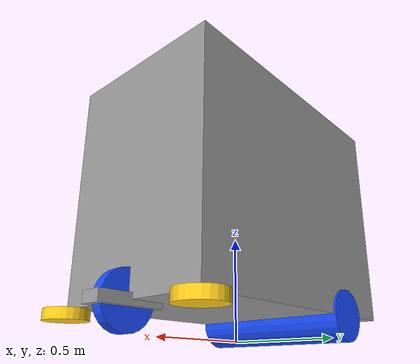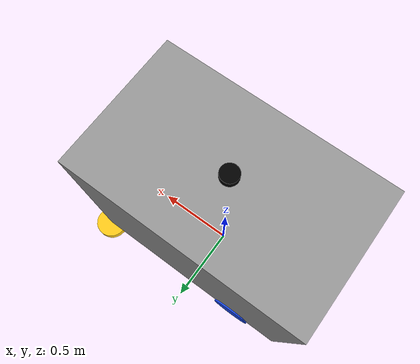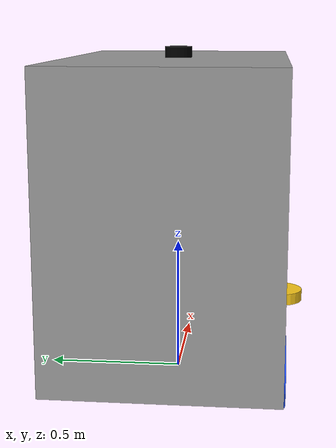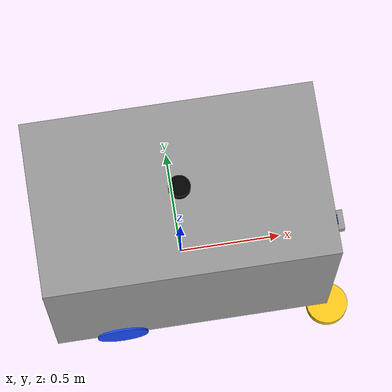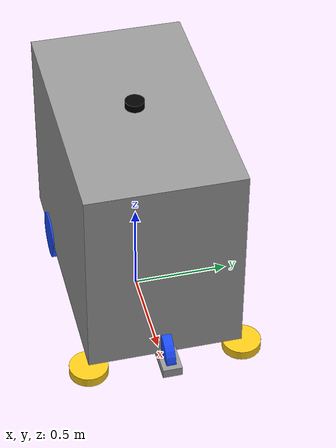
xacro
<?xml version="1.0"?>
<robot xmlns:xacro="http://www.ros.org/wiki/xacro"  name="robot">

    <xacro:arg name="use_ros2_control" default="false"/>
    <xacro:arg name="sim_mode" default="true"/>

    <xacro:include filename="sweeper_core.xacro" />

    <xacro:if value="$(arg use_ros2_control)">
        <xacro:include filename="ros2_control.xacro" />
    </xacro:if>
    <xacro:unless value="$(arg use_ros2_control)">
        <xacro:include filename="gazebo_control.xacro" />
    </xacro:unless>
    <xacro:include filename="lidar.xacro" />

</robot>

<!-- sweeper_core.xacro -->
<robot xmlns:xacro="http://www.ros.org/wiki/xacro">

  <xacro:include filename="inertial_macros.xacro"/>

  <!-- Eigenschappen -->
  <xacro:property name="base_length" value="1.33"/>
  <xacro:property name="base_width" value="0.8"/>
  <xacro:property name="base_height" value="1.07"/>
  <xacro:property name="base_mass" value="10.0"/>

  <xacro:property name="wheel_radius" value="0.125"/>
  <xacro:property name="wheel_thickness" value="0.05"/>
  <xacro:property name="wheel_mass" value="1.0"/>
  <xacro:property name="wheel_separation" value="0.82"/>

  <xacro:property name="front_wheel_offset_x" value="${base_length/2}"/>
  <xacro:property name="rear_wheel_offset_x" value="${-base_length/2 + 0.32}"/>

  <!-- Wielen komen met hun onderkant op z=0 -->
  <xacro:property name="wheel_offset_z" value="${wheel_radius}"/>

  <xacro:property name="brush_offset_y" value="${base_width/2 + 0.1}"/>
  <xacro:property name="brush_radius" value="0.1"/>
  <xacro:property name="brush_length" value="0.05"/>

  <!-- Kleuren -->
  <material name="blue">
    <color rgba="0.1 0.3 1.0 1.0"/>
  </material>

  <material name="yellow">
    <color rgba="1.0 0.8 0.1 1.0"/>
  </material>

  <material name="gray">
    <color rgba="0.6 0.6 0.6 1.0"/>
  </material>

  <material name="black">
    <color rgba="0 0 0 1"/>
  </material>

  <!-- BASE LINK -->
  <link name="base_link">
    <visual>
      <origin xyz="0 0 ${wheel_offset_z + base_height/2}"/>
      <geometry>
        <box size="${base_length} ${base_width} ${base_height}"/>
      </geometry>
      <material name="gray"/>
    </visual>
    <collision>
      <origin xyz="0 0 ${wheel_offset_z + base_height/2}"/>
      <geometry>
        <box size="${base_length} ${base_width} ${base_height}"/>
      </geometry>
    </collision>
    <xacro:inertial_box mass="${base_mass}" x="${base_length}" y="${base_width}" z="${base_height}">
      <origin xyz="0 0 ${wheel_offset_z + base_height/2}" rpy="0 0 0"/>
    </xacro:inertial_box>
  </link>

  <gazebo reference="base_link">
    <material>Gazebo/Grey</material>
  </gazebo>

  <!-- BACK WHEELS -->
  <joint name="rear_wheel_joint" type="continuous">
    <parent link="base_link"/>
    <child link="back_wheels"/>
    <origin xyz="${rear_wheel_offset_x} 0 ${wheel_offset_z}"/>
    <axis xyz="0 1 0"/>
  </joint>

  <link name="back_wheels">
    <visual>
      <origin xyz="0 0 0" rpy="${pi/2} 0 0"/>
      <geometry>
        <cylinder radius="${wheel_radius}" length="${wheel_separation}"/>
      </geometry>
      <material name="blue"/>
    </visual>
    <collision>
      <origin xyz="0 0 0" rpy="${pi/2} 0 0"/>
      <geometry>
        <cylinder radius="${wheel_radius}" length="${wheel_separation}"/>
      </geometry>
    </collision>
  </link>

  <gazebo reference="back_wheels">
    <material>Gazebo/Blue</material>
  </gazebo>

  <!-- FRONT STEERING -->
  <joint name="steering_joint" type="revolute">
    <parent link="base_link"/>
    <child link="front_steering"/>
    <origin xyz="${front_wheel_offset_x} 0 ${wheel_offset_z}"/>
    <axis xyz="0 0 1"/>
    <limit lower="-0.785" upper="0.785" effort="10" velocity="1.0"/>
  </joint>

  <link name="front_steering">
    <visual>
      <geometry>
        <box size="0.3 0.1 0.05"/>
      </geometry>
      <material name="gray"/>
    </visual>
  </link>

  <gazebo reference="front_steering">
    <material>Gazebo/Grey</material>
  </gazebo>

  <!-- FRONT WHEEL -->
  <joint name="front_wheel_joint" type="continuous">
    <parent link="front_steering"/>
    <child link="front_wheel"/>
    <origin xyz="0 0 0"/>
    <axis xyz="0 1 0"/>
  </joint>

  <link name="front_wheel">
    <visual>
      <origin xyz="0 0 0" rpy="${pi/2} 0 0"/>
      <geometry>
        <cylinder radius="${wheel_radius}" length="${wheel_thickness}"/>
      </geometry>
      <material name="blue"/>
    </visual>
  </link>

  <gazebo reference="front_wheel">
    <material>Gazebo/Blue</material>
  </gazebo>

  <!-- LEFT BRUSH -->
  <joint name="brush_left_joint" type="fixed">
    <parent link="base_link"/>
    <child link="brush_left"/>
    <origin xyz="0.665 ${brush_offset_y - 0.1} ${wheel_offset_z - brush_length/2}"/>
  </joint>

  <link name="brush_left">
    <visual>
      <origin xyz="0 0 0" rpy="0 0 0"/>
      <geometry>
        <cylinder radius="${brush_radius}" length="${brush_length}"/>
      </geometry>
      <material name="yellow"/>
    </visual>
  </link>

  <gazebo reference="brush_left">
    <material>Gazebo/Yellow</material>
  </gazebo>

  <!-- RIGHT BRUSH -->
  <joint name="brush_right_joint" type="fixed">
    <parent link="base_link"/>
    <child link="brush_right"/>
    <origin xyz="0.665 ${-brush_offset_y + 0.1} ${wheel_offset_z - brush_length/2}"/>
  </joint>

  <link name="brush_right">
    <visual>
      <origin xyz="0 0 0" rpy="0 0 0"/>
      <geometry>
        <cylinder radius="${brush_radius}" length="${brush_length}"/>
      </geometry>
      <material name="yellow"/>
    </visual>
  </link>

  <gazebo reference="brush_right">
    <material>Gazebo/Yellow</material>
  </gazebo>

</robot>

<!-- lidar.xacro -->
<robot xmlns:xacro="http://www.ros.org/wiki/xacro" >

    <joint name="laser_joint" type="fixed">
        <parent link="base_link"/>
        <child link="laser_frame"/>
        <origin xyz="0 0 1.215" rpy="0 0 0"/>
    </joint>

    <link name="laser_frame">
        <visual>
            <geometry>
                <cylinder radius="0.05" length="0.04"/>
            </geometry>
            <material name="black"/>
        </visual>
        <visual>
            <origin xyz="0 0 -0.05"/>
            <geometry>
                <cylinder radius="0.01" length="0.1"/>
            </geometry>
            <material name="black"/>
        </visual>
        <collision>
            <geometry>
                <cylinder radius="0.05" length="0.04"/>
            </geometry>
        </collision>
        <xacro:inertial_cylinder mass="0.1" length="0.04" radius="0.05">
            <origin xyz="0 0 0" rpy="0 0 0"/>
        </xacro:inertial_cylinder>
    </link>

    <gazebo reference="laser_frame">
        <material>Gazebo/Black</material>

        <sensor name="laser" type="gpu_lidar">
            <pose> 0 0 0 0 0 0 </pose>
            <visualize>false</visualize>
            <update_rate>10</update_rate>
            <lidar>
                <scan>
                    <horizontal>
                        <samples>360</samples>
                        <min_angle>-3.14</min_angle>
                        <max_angle>3.14</max_angle>
                    </horizontal>
                </scan>
                <range>
                    <min>0.3</min>
                    <max>12</max>
                </range>
            </lidar>
            <topic>scan</topic>
            <gz_frame_id>laser_frame</gz_frame_id>
        </sensor>
    </gazebo>

</robot>
